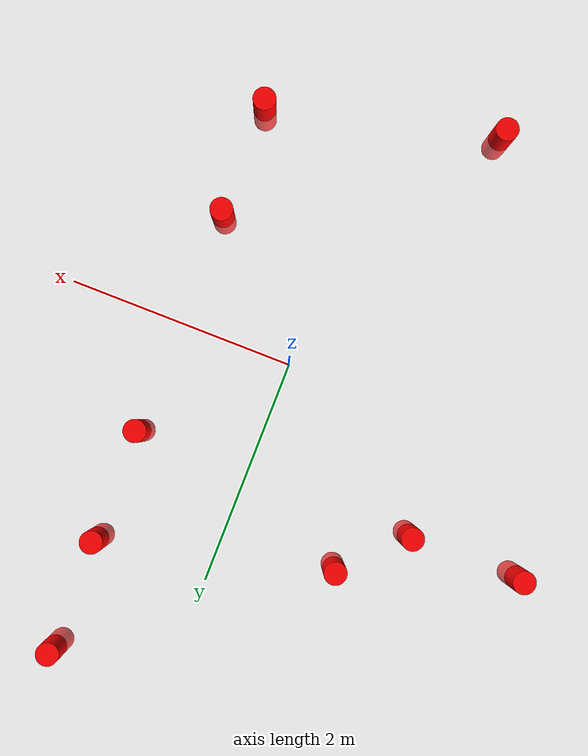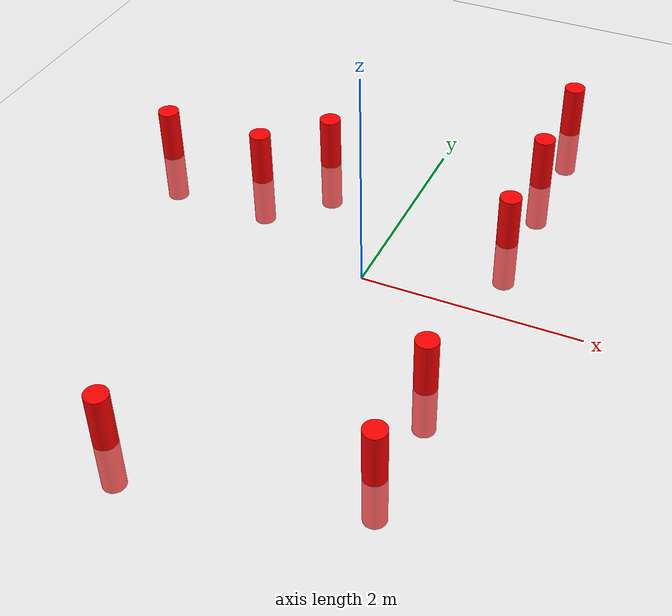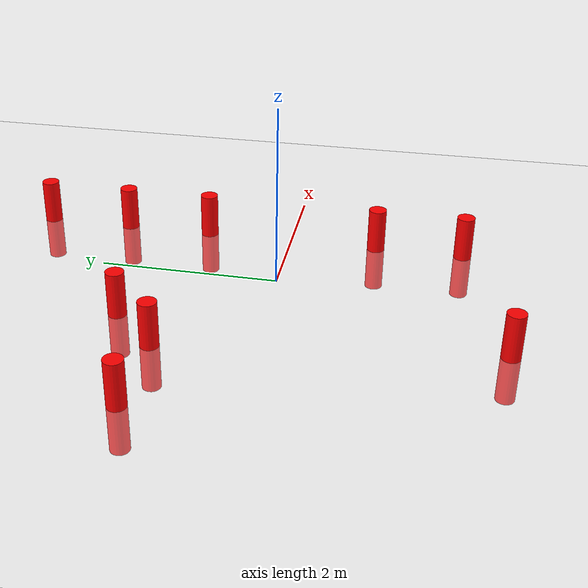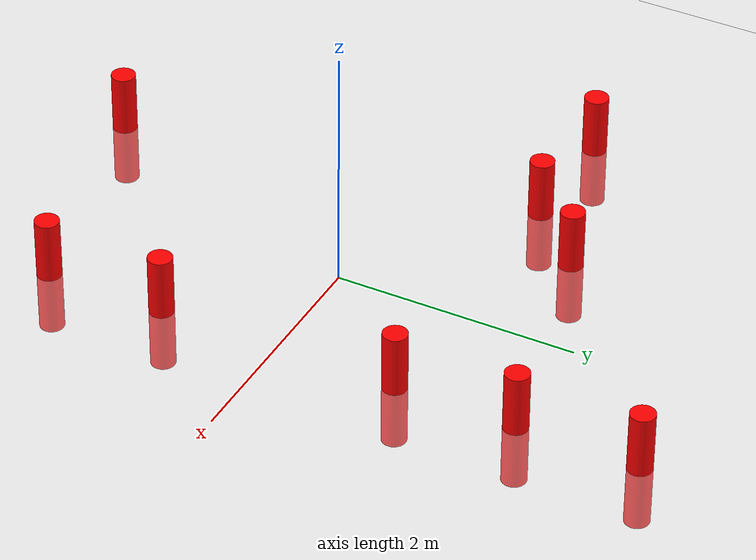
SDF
<?xml version='1.0' encoding='us-ascii'?>
<sdf version="1.9">
  <world name="landmark">
    <physics name="1ms" type="ignore">
      <max_step_size>0.001</max_step_size>
      <real_time_factor>1.0</real_time_factor>
    </physics>
    <plugin filename="gz-sim-user-commands-system" name="gz::sim::systems::UserCommands" />
    <plugin filename="gz-sim-physics-system" name="gz::sim::systems::Physics" />
    <plugin filename="gz-sim-sensors-system" name="gz::sim::systems::Sensors">
      <render_engine>ogre2</render_engine>
    </plugin>
    <plugin filename="gz-sim-scene-broadcaster-system" name="gz::sim::systems::SceneBroadcaster" />
    <scene>
      <ambient>1.0 1.0 1.0</ambient>
      <background>0.8 0.8 0.8</background>
      <sky />
    </scene>
    <light type="directional" name="sun">
      <cast_shadows>true</cast_shadows>
      <pose>0 0 3 0 0 0</pose>
      <diffuse>0.8 0.8 0.8 1</diffuse>
      <specular>0.8 0.8 0.8 1</specular>
      <direction>-0.5 0.1 -0.9</direction>
      <attenuation>
        <range>1000</range>
        <constant>0.9</constant>
        <linear>0.01</linear>
        <quadratic>0.001</quadratic>
      </attenuation>
    </light>
    <model name="ground_plane">
      <pose>0 0 0  0 0 0</pose>
      <static>true</static>
      <link name="ground_plane_link">
        <visual name="ground_plane_visual">
          <geometry>
            <plane>
              <normal>0 0 1</normal>
              <size>5000 5000</size>
            </plane>
          </geometry>
          <material>
            <ambient>1 1 1 1</ambient>
            <diffuse>1 1 1 1</diffuse>
            <specular>0 0 0 0</specular>
            <emissive>1 1 1 1</emissive>
          </material>
        </visual>
        <collision name="ground_plane_collision">
          <geometry>
            <plane>
              <normal>0 0 1</normal>
              <size>5000 5000</size>
            </plane>
          </geometry>
        </collision>
      </link>
    </model>

    <model name="pillar_1">
      <pose>1 1 0  0 0 0</pose>
      <static>true</static>
      <link name="pillar_1_link">
        <visual name="pillar_1_link_visual">
          <geometry>
            <cylinder>
              <length>1</length>
              <radius>0.1</radius>
            </cylinder>
          </geometry>
          <material>
            <ambient>1 0 0 1</ambient>
            <diffuse>1 0 0 1</diffuse>
            <specular>0 0 0 0</specular>
            <emissive>1 0 0 1</emissive>
          </material>
        </visual>
        <collision name="pillar_1_link_collision">
          <geometry>
            <cylinder>
              <length>1</length>
              <radius>0.1</radius>
            </cylinder>
          </geometry>
        </collision>
      </link>
    </model>

    <model name="pillar_2">
      <pose>1 2 0  0 0 0</pose>
      <static>true</static>
      <link name="pillar_2_link">
        <visual name="pillar_2_link_visual">
          <geometry>
            <cylinder>
              <length>1</length>
              <radius>0.1</radius>
            </cylinder>
          </geometry>
          <material>
            <ambient>1 0 0 1</ambient>
            <diffuse>1 0 0 1</diffuse>
            <specular>0 0 0 0</specular>
            <emissive>1 0 0 1</emissive>
          </material>
        </visual>
        <collision name="pillar_2_link_collision">
          <geometry>
            <cylinder>
              <length>1</length>
              <radius>0.1</radius>
            </cylinder>
          </geometry>
        </collision>
      </link>
    </model>

    <model name="pillar_3">
      <pose>1 -1 0  0 0 0</pose>
      <static>true</static>
      <link name="pillar_3_link">
        <visual name="pillar_3_link_visual">
          <geometry>
            <cylinder>
              <length>1</length>
              <radius>0.1</radius>
            </cylinder>
          </geometry>
          <material>
            <ambient>1 0 0 1</ambient>
            <diffuse>1 0 0 1</diffuse>
            <specular>0 0 0 0</specular>
            <emissive>1 0 0 1</emissive>
          </material>
        </visual>
        <collision name="pillar_3_link_collision">
          <geometry>
            <cylinder>
              <length>1</length>
              <radius>0.1</radius>
            </cylinder>
          </geometry>
        </collision>
      </link>
    </model>

    <model name="pillar_4">
      <pose>1 -2 0  0 0 0</pose>
      <static>true</static>
      <link name="pillar_4_link">
        <visual name="pillar_4_link_visual">
          <geometry>
            <cylinder>
              <length>1</length>
              <radius>0.1</radius>
            </cylinder>
          </geometry>
          <material>
            <ambient>1 0 0 1</ambient>
            <diffuse>1 0 0 1</diffuse>
            <specular>0 0 0 0</specular>
            <emissive>1 0 0 1</emissive>
          </material>
        </visual>
        <collision name="pillar_4_link_collision">
          <geometry>
            <cylinder>
              <length>1</length>
              <radius>0.1</radius>
            </cylinder>
          </geometry>
        </collision>
      </link>
    </model>

    <model name="pillar_5">
      <pose>-1.5 1 0  0 0 0</pose>
      <static>true</static>
      <link name="pillar_5_link">
        <visual name="pillar_5_link_visual">
          <geometry>
            <cylinder>
              <length>1</length>
              <radius>0.1</radius>
            </cylinder>
          </geometry>
          <material>
            <ambient>1 0 0 1</ambient>
            <diffuse>1 0 0 1</diffuse>
            <specular>0 0 0 0</specular>
            <emissive>1 0 0 1</emissive>
          </material>
        </visual>
        <collision name="pillar_5_link_collision">
          <geometry>
            <cylinder>
              <length>1</length>
              <radius>0.1</radius>
            </cylinder>
          </geometry>
        </collision>
      </link>
    </model>

    <model name="pillar_6">
      <pose>1 1 0  0 0 0</pose>
      <static>true</static>
      <link name="pillar_6_link">
        <visual name="pillar_6_link_visual">
          <geometry>
            <cylinder>
              <length>1</length>
              <radius>0.1</radius>
            </cylinder>
          </geometry>
          <material>
            <ambient>1 0 0 1</ambient>
            <diffuse>1 0 0 1</diffuse>
            <specular>0 0 0 0</specular>
            <emissive>1 0 0 1</emissive>
          </material>
        </visual>
        <collision name="pillar_6_link_collision">
          <geometry>
            <cylinder>
              <length>1</length>
              <radius>0.1</radius>
            </cylinder>
          </geometry>
        </collision>
      </link>
    </model>

    <model name="pillar_7">
      <pose>-1 1.5 0  0 0 0</pose>
      <static>true</static>
      <link name="pillar_7_link">
        <visual name="pillar_7_link_visual">
          <geometry>
            <cylinder>
              <length>1</length>
              <radius>0.1</radius>
            </cylinder>
          </geometry>
          <material>
            <ambient>1 0 0 1</ambient>
            <diffuse>1 0 0 1</diffuse>
            <specular>0 0 0 0</specular>
            <emissive>1 0 0 1</emissive>
          </material>
        </visual>
        <collision name="pillar_7_link_collision">
          <geometry>
            <cylinder>
              <length>1</length>
              <radius>0.1</radius>
            </cylinder>
          </geometry>
        </collision>
      </link>
    </model>

    <model name="pillar_8">
      <pose>1 3 0  0 0 0</pose>
      <static>true</static>
      <link name="pillar_8_link">
        <visual name="pillar_8_link_visual">
          <geometry>
            <cylinder>
              <length>1</length>
              <radius>0.1</radius>
            </cylinder>
          </geometry>
          <material>
            <ambient>1 0 0 1</ambient>
            <diffuse>1 0 0 1</diffuse>
            <specular>0 0 0 0</specular>
            <emissive>1 0 0 1</emissive>
          </material>
        </visual>
        <collision name="pillar_8_link_collision">
          <geometry>
            <cylinder>
              <length>1</length>
              <radius>0.1</radius>
            </cylinder>
          </geometry>
        </collision>
      </link>
    </model>

    <model name="pillar_9">
      <pose>-1 -2.5 0  0 0 0</pose>
      <static>true</static>
      <link name="pillar_9_link">
        <visual name="pillar_9_link_visual">
          <geometry>
            <cylinder>
              <length>1</length>
              <radius>0.1</radius>
            </cylinder>
          </geometry>
          <material>
            <ambient>1 0 0 1</ambient>
            <diffuse>1 0 0 1</diffuse>
            <specular>0 0 0 0</specular>
            <emissive>1 0 0 1</emissive>
          </material>
        </visual>
        <collision name="pillar_9_link_collision">
          <geometry>
            <cylinder>
              <length>1</length>
              <radius>0.1</radius>
            </cylinder>
          </geometry>
        </collision>
      </link>
    </model>

    <model name="pillar_10">
      <pose>-2.5 1 0  0 0 0</pose>
      <static>true</static>
      <link name="pillar_10_link">
        <visual name="pillar_10_link_visual">
          <geometry>
            <cylinder>
              <length>1</length>
              <radius>0.1</radius>
            </cylinder>
          </geometry>
          <material>
            <ambient>1 0 0 1</ambient>
            <diffuse>1 0 0 1</diffuse>
            <specular>0 0 0 0</specular>
            <emissive>1 0 0 1</emissive>
          </material>
        </visual>
        <collision name="pillar_10_link_collision">
          <geometry>
            <cylinder>
              <length>1</length>
              <radius>0.1</radius>
            </cylinder>
          </geometry>
        </collision>
      </link>
    </model>
  </world>
</sdf>
